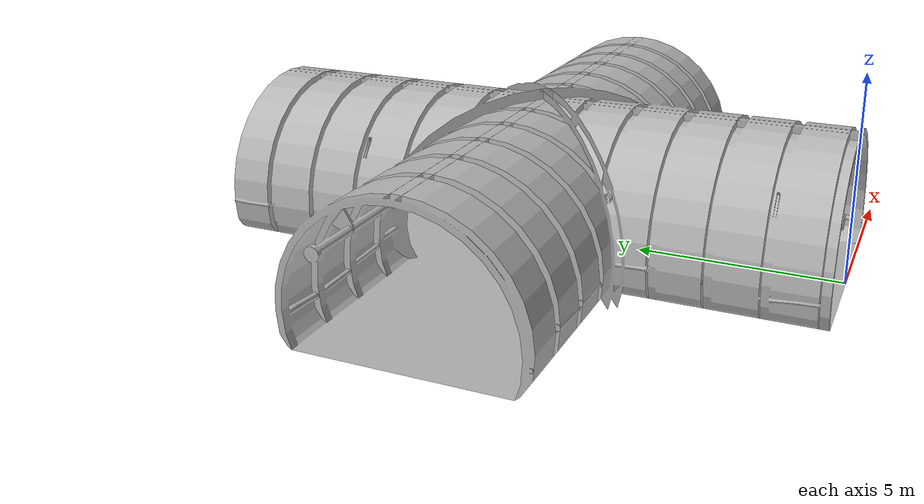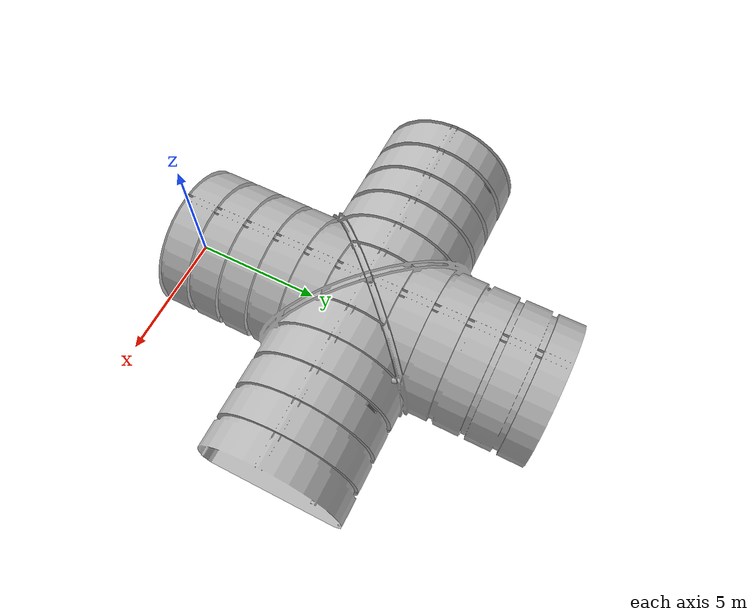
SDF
<?xml version="1.0" ?>
<sdf version="1.6">
  <model name="tunnel_intersection">
    <static>true</static>
    <link name="link">
      <collision name="collision">
        <geometry>
          <mesh>
            <scale>0.01 0.01 0.01</scale>
            <uri>model://tunnel_intersection/meshes/Tunnel_Intersection.obj</uri>
          </mesh>
        </geometry>
      </collision>
      <visual name="visual">
        <geometry>
          <mesh>
            <scale>0.01 0.01 0.01</scale>
            <uri>model://tunnel_intersection/meshes/Tunnel_Intersection.obj</uri>
          </mesh>
        </geometry>
      </visual>
    </link>
  </model>
</sdf>
